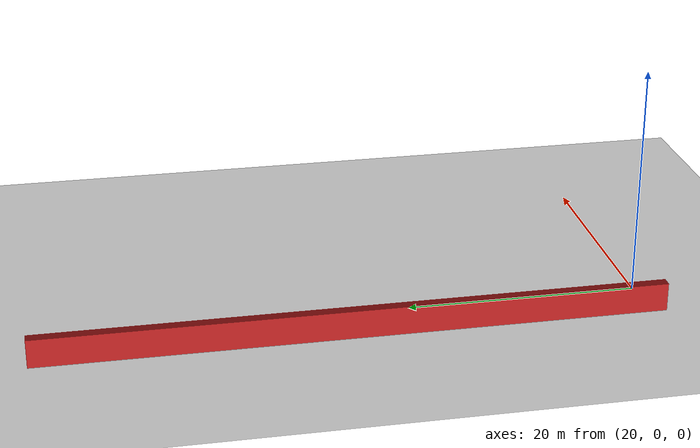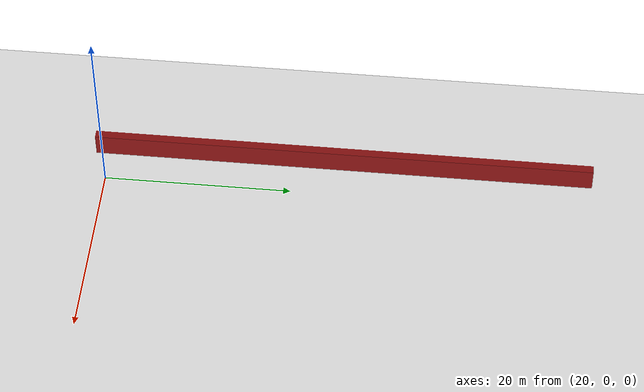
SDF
<sdf version="1.4">
 <world name="1_wall">
  <model name="ground_plane">
   <static>1</static>
   <link name="link">
    <collision name="collision">
     <geometry><plane><normal>0 0 1</normal><size>1000 1000</size></plane></geometry>
     <surface><friction><ode><mu>100</mu><mu2>50</mu2></ode></friction></surface>
    </collision>
    <visual name="visual">
     <cast_shadows>0</cast_shadows>
     <geometry><plane><normal>0 0 1</normal><size>10000 10000</size></plane></geometry>
     <material>
      <script><uri>file://media/materials/scripts/gazebo.material</uri><name>Gazebo/Grey</name></script>
     </material>
    </visual>
    <velocity_decay><linear>0</linear><angular>0</angular></velocity_decay>
   </link>
  </model>
  <model name="Wall_341">
   <static>1</static>
   <link name="Wall_341">
    <collision name="Wall_Collision_341">
     <geometry><box><size>53.65 0.05 2.5</size></box></geometry>
     <pose>0 0 1.25 0 -0 0</pose>
    </collision>
    <visual name="Wall_Visual_341">
     <pose>0 0 1.25 0 -0 0</pose>
     <geometry><box><size>53.65 0.05 2.5</size></box></geometry>
     <material>
      <script><uri>file://media/materials/scripts/gazebo.material</uri><name>Gazebo/Red</name></script>
     </material>
    </visual>
    <velocity_decay><linear>0</linear><angular>0</angular></velocity_decay>
    <pose>15.55 25.3 0 0 0 1.5707963267948966</pose>
   </link>
  </model>
  <model name="Wall_342">
   <static>1</static>
   <link name="Wall_342">
    <collision name="Wall_Collision_342">
     <geometry><box><size>53.65 0.05 2.5</size></box></geometry>
     <pose>0 0 1.25 0 -0 0</pose>
    </collision>
    <visual name="Wall_Visual_342">
     <pose>0 0 1.25 0 -0 0</pose>
     <geometry><box><size>53.65 0.05 2.5</size></box></geometry>
     <material>
      <script><uri>file://media/materials/scripts/gazebo.material</uri><name>Gazebo/Red</name></script>
     </material>
    </visual>
    <velocity_decay><linear>0</linear><angular>0</angular></velocity_decay>
    <pose>15.6 25.3 0 0 0 1.5707963267948966</pose>
   </link>
  </model>
  <model name="Wall_343">
   <static>1</static>
   <link name="Wall_343">
    <collision name="Wall_Collision_343">
     <geometry><box><size>53.65 0.05 2.5</size></box></geometry>
     <pose>0 0 1.25 0 -0 0</pose>
    </collision>
    <visual name="Wall_Visual_343">
     <pose>0 0 1.25 0 -0 0</pose>
     <geometry><box><size>53.65 0.05 2.5</size></box></geometry>
     <material>
      <script><uri>file://media/materials/scripts/gazebo.material</uri><name>Gazebo/Red</name></script>
     </material>
    </visual>
    <velocity_decay><linear>0</linear><angular>0</angular></velocity_decay>
    <pose>15.65 25.3 0 0 0 1.5707963267948966</pose>
   </link>
  </model>
  <model name="Wall_344">
   <static>1</static>
   <link name="Wall_344">
    <collision name="Wall_Collision_344">
     <geometry><box><size>53.65 0.05 2.5</size></box></geometry>
     <pose>0 0 1.25 0 -0 0</pose>
    </collision>
    <visual name="Wall_Visual_344">
     <pose>0 0 1.25 0 -0 0</pose>
     <geometry><box><size>53.65 0.05 2.5</size></box></geometry>
     <material>
      <script><uri>file://media/materials/scripts/gazebo.material</uri><name>Gazebo/Red</name></script>
     </material>
    </visual>
    <velocity_decay><linear>0</linear><angular>0</angular></velocity_decay>
    <pose>15.7 25.3 0 0 0 1.5707963267948966</pose>
   </link>
  </model>
  <model name="Wall_345">
   <static>1</static>
   <link name="Wall_345">
    <collision name="Wall_Collision_345">
     <geometry><box><size>53.65 0.05 2.5</size></box></geometry>
     <pose>0 0 1.25 0 -0 0</pose>
    </collision>
    <visual name="Wall_Visual_345">
     <pose>0 0 1.25 0 -0 0</pose>
     <geometry><box><size>53.65 0.05 2.5</size></box></geometry>
     <material>
      <script><uri>file://media/materials/scripts/gazebo.material</uri><name>Gazebo/Red</name></script>
     </material>
    </visual>
    <velocity_decay><linear>0</linear><angular>0</angular></velocity_decay>
    <pose>15.75 25.3 0 0 0 1.5707963267948966</pose>
   </link>
  </model>
  <model name="Wall_346">
   <static>1</static>
   <link name="Wall_346">
    <collision name="Wall_Collision_346">
     <geometry><box><size>53.65 0.05 2.5</size></box></geometry>
     <pose>0 0 1.25 0 -0 0</pose>
    </collision>
    <visual name="Wall_Visual_346">
     <pose>0 0 1.25 0 -0 0</pose>
     <geometry><box><size>53.65 0.05 2.5</size></box></geometry>
     <material>
      <script><uri>file://media/materials/scripts/gazebo.material</uri><name>Gazebo/Red</name></script>
     </material>
    </visual>
    <velocity_decay><linear>0</linear><angular>0</angular></velocity_decay>
    <pose>15.8 25.3 0 0 0 1.5707963267948966</pose>
   </link>
  </model>
  <model name="Wall_347">
   <static>1</static>
   <link name="Wall_347">
    <collision name="Wall_Collision_347">
     <geometry><box><size>53.65 0.05 2.5</size></box></geometry>
     <pose>0 0 1.25 0 -0 0</pose>
    </collision>
    <visual name="Wall_Visual_347">
     <pose>0 0 1.25 0 -0 0</pose>
     <geometry><box><size>53.65 0.05 2.5</size></box></geometry>
     <material>
      <script><uri>file://media/materials/scripts/gazebo.material</uri><name>Gazebo/Red</name></script>
     </material>
    </visual>
    <velocity_decay><linear>0</linear><angular>0</angular></velocity_decay>
    <pose>15.85 25.3 0 0 0 1.5707963267948966</pose>
   </link>
  </model>
  <model name="Wall_348">
   <static>1</static>
   <link name="Wall_348">
    <collision name="Wall_Collision_348">
     <geometry><box><size>53.65 0.05 2.5</size></box></geometry>
     <pose>0 0 1.25 0 -0 0</pose>
    </collision>
    <visual name="Wall_Visual_348">
     <pose>0 0 1.25 0 -0 0</pose>
     <geometry><box><size>53.65 0.05 2.5</size></box></geometry>
     <material>
      <script><uri>file://media/materials/scripts/gazebo.material</uri><name>Gazebo/Red</name></script>
     </material>
    </visual>
    <velocity_decay><linear>0</linear><angular>0</angular></velocity_decay>
    <pose>15.9 25.3 0 0 0 1.5707963267948966</pose>
   </link>
  </model>
  <model name="Wall_349">
   <static>1</static>
   <link name="Wall_349">
    <collision name="Wall_Collision_349">
     <geometry><box><size>53.65 0.05 2.5</size></box></geometry>
     <pose>0 0 1.25 0 -0 0</pose>
    </collision>
    <visual name="Wall_Visual_349">
     <pose>0 0 1.25 0 -0 0</pose>
     <geometry><box><size>53.65 0.05 2.5</size></box></geometry>
     <material>
      <script><uri>file://media/materials/scripts/gazebo.material</uri><name>Gazebo/Red</name></script>
     </material>
    </visual>
    <velocity_decay><linear>0</linear><angular>0</angular></velocity_decay>
    <pose>15.95 25.3 0 0 0 1.5707963267948966</pose>
   </link>
  </model>
  <model name="Wall_350">
   <static>1</static>
   <link name="Wall_350">
    <collision name="Wall_Collision_350">
     <geometry><box><size>53.65 0.05 2.5</size></box></geometry>
     <pose>0 0 1.25 0 -0 0</pose>
    </collision>
    <visual name="Wall_Visual_350">
     <pose>0 0 1.25 0 -0 0</pose>
     <geometry><box><size>53.65 0.05 2.5</size></box></geometry>
     <material>
      <script><uri>file://media/materials/scripts/gazebo.material</uri><name>Gazebo/Red</name></script>
     </material>
    </visual>
    <velocity_decay><linear>0</linear><angular>0</angular></velocity_decay>
    <pose>16.0 25.3 0 0 0 1.5707963267948966</pose>
   </link>
  </model>
  <model name="Wall_351">
   <static>1</static>
   <link name="Wall_351">
    <collision name="Wall_Collision_351">
     <geometry><box><size>53.65 0.05 2.5</size></box></geometry>
     <pose>0 0 1.25 0 -0 0</pose>
    </collision>
    <visual name="Wall_Visual_351">
     <pose>0 0 1.25 0 -0 0</pose>
     <geometry><box><size>53.65 0.05 2.5</size></box></geometry>
     <material>
      <script><uri>file://media/materials/scripts/gazebo.material</uri><name>Gazebo/Red</name></script>
     </material>
    </visual>
    <velocity_decay><linear>0</linear><angular>0</angular></velocity_decay>
    <pose>16.05 25.3 0 0 0 1.5707963267948966</pose>
   </link>
  </model>
  <model name="Wall_352">
   <static>1</static>
   <link name="Wall_352">
    <collision name="Wall_Collision_352">
     <geometry><box><size>53.65 0.05 2.5</size></box></geometry>
     <pose>0 0 1.25 0 -0 0</pose>
    </collision>
    <visual name="Wall_Visual_352">
     <pose>0 0 1.25 0 -0 0</pose>
     <geometry><box><size>53.65 0.05 2.5</size></box></geometry>
     <material>
      <script><uri>file://media/materials/scripts/gazebo.material</uri><name>Gazebo/Red</name></script>
     </material>
    </visual>
    <velocity_decay><linear>0</linear><angular>0</angular></velocity_decay>
    <pose>16.1 25.3 0 0 0 1.5707963267948966</pose>
   </link>
  </model>
  <model name="Wall_353">
   <static>1</static>
   <link name="Wall_353">
    <collision name="Wall_Collision_353">
     <geometry><box><size>53.65 0.05 2.5</size></box></geometry>
     <pose>0 0 1.25 0 -0 0</pose>
    </collision>
    <visual name="Wall_Visual_353">
     <pose>0 0 1.25 0 -0 0</pose>
     <geometry><box><size>53.65 0.05 2.5</size></box></geometry>
     <material>
      <script><uri>file://media/materials/scripts/gazebo.material</uri><name>Gazebo/Red</name></script>
     </material>
    </visual>
    <velocity_decay><linear>0</linear><angular>0</angular></velocity_decay>
    <pose>16.15 25.3 0 0 0 1.5707963267948966</pose>
   </link>
  </model>
  <model name="Wall_354">
   <static>1</static>
   <link name="Wall_354">
    <collision name="Wall_Collision_354">
     <geometry><box><size>53.65 0.05 2.5</size></box></geometry>
     <pose>0 0 1.25 0 -0 0</pose>
    </collision>
    <visual name="Wall_Visual_354">
     <pose>0 0 1.25 0 -0 0</pose>
     <geometry><box><size>53.65 0.05 2.5</size></box></geometry>
     <material>
      <script><uri>file://media/materials/scripts/gazebo.material</uri><name>Gazebo/Red</name></script>
     </material>
    </visual>
    <velocity_decay><linear>0</linear><angular>0</angular></velocity_decay>
    <pose>16.2 25.3 0 0 0 1.5707963267948966</pose>
   </link>
  </model>
  <model name="Wall_355">
   <static>1</static>
   <link name="Wall_355">
    <collision name="Wall_Collision_355">
     <geometry><box><size>53.65 0.05 2.5</size></box></geometry>
     <pose>0 0 1.25 0 -0 0</pose>
    </collision>
    <visual name="Wall_Visual_355">
     <pose>0 0 1.25 0 -0 0</pose>
     <geometry><box><size>53.65 0.05 2.5</size></box></geometry>
     <material>
      <script><uri>file://media/materials/scripts/gazebo.material</uri><name>Gazebo/Red</name></script>
     </material>
    </visual>
    <velocity_decay><linear>0</linear><angular>0</angular></velocity_decay>
    <pose>16.25 25.3 0 0 0 1.5707963267948966</pose>
   </link>
  </model>
  <model name="Wall_356">
   <static>1</static>
   <link name="Wall_356">
    <collision name="Wall_Collision_356">
     <geometry><box><size>53.65 0.05 2.5</size></box></geometry>
     <pose>0 0 1.25 0 -0 0</pose>
    </collision>
    <visual name="Wall_Visual_356">
     <pose>0 0 1.25 0 -0 0</pose>
     <geometry><box><size>53.65 0.05 2.5</size></box></geometry>
     <material>
      <script><uri>file://media/materials/scripts/gazebo.material</uri><name>Gazebo/Red</name></script>
     </material>
    </visual>
    <velocity_decay><linear>0</linear><angular>0</angular></velocity_decay>
    <pose>16.3 25.3 0 0 0 1.5707963267948966</pose>
   </link>
  </model>
  <model name="Wall_357">
   <static>1</static>
   <link name="Wall_357">
    <collision name="Wall_Collision_357">
     <geometry><box><size>53.65 0.05 2.5</size></box></geometry>
     <pose>0 0 1.25 0 -0 0</pose>
    </collision>
    <visual name="Wall_Visual_357">
     <pose>0 0 1.25 0 -0 0</pose>
     <geometry><box><size>53.65 0.05 2.5</size></box></geometry>
     <material>
      <script><uri>file://media/materials/scripts/gazebo.material</uri><name>Gazebo/Red</name></script>
     </material>
    </visual>
    <velocity_decay><linear>0</linear><angular>0</angular></velocity_decay>
    <pose>16.35 25.3 0 0 0 1.5707963267948966</pose>
   </link>
  </model>
  <model name="Wall_358">
   <static>1</static>
   <link name="Wall_358">
    <collision name="Wall_Collision_358">
     <geometry><box><size>53.65 0.05 2.5</size></box></geometry>
     <pose>0 0 1.25 0 -0 0</pose>
    </collision>
    <visual name="Wall_Visual_358">
     <pose>0 0 1.25 0 -0 0</pose>
     <geometry><box><size>53.65 0.05 2.5</size></box></geometry>
     <material>
      <script><uri>file://media/materials/scripts/gazebo.material</uri><name>Gazebo/Red</name></script>
     </material>
    </visual>
    <velocity_decay><linear>0</linear><angular>0</angular></velocity_decay>
    <pose>16.4 25.3 0 0 0 1.5707963267948966</pose>
   </link>
  </model>
 </world>
</sdf>
